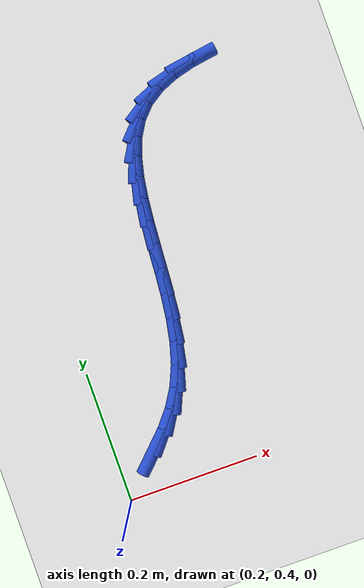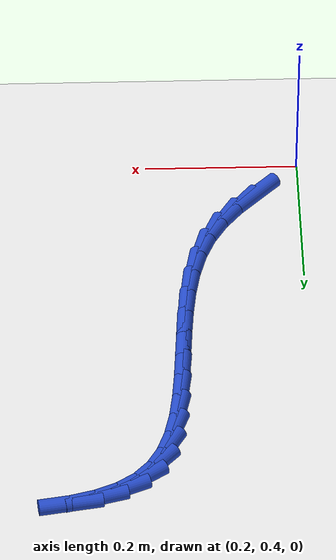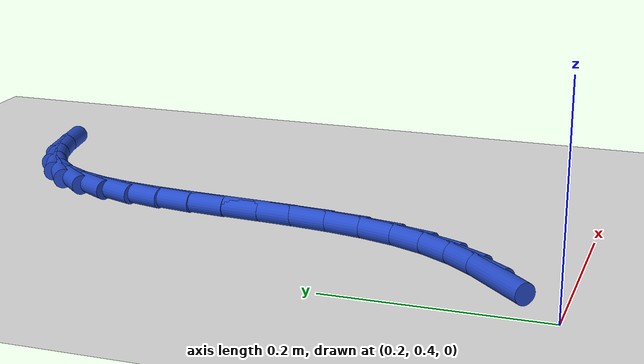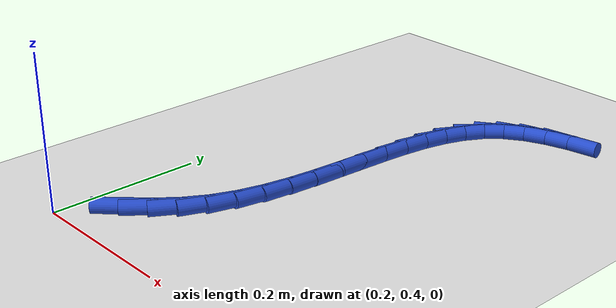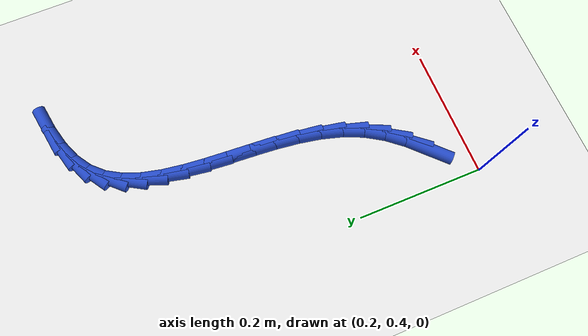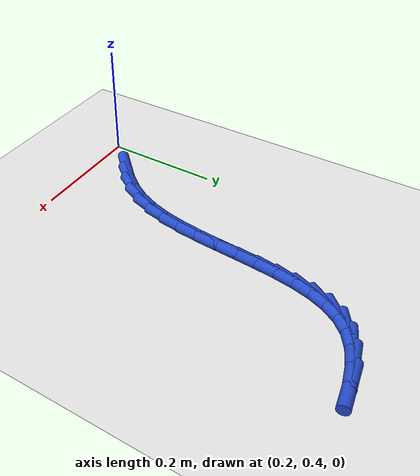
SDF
<sdf version="1.6">
 <world name="default">
  <model name="ground_plane">
   <static>1</static>
   <link name="link">
    <collision name="collision">
     <geometry><plane><normal>0 0 1</normal><size>100 100</size></plane></geometry>
     <surface><friction><ode><mu>100</mu><mu2>50</mu2></ode></friction></surface>
    </collision>
    <visual name="visual">
     <cast_shadows>0</cast_shadows>
     <geometry><plane><normal>0 0 1</normal><size>100 100</size></plane></geometry>
     <material>
      <script><uri>file://media/materials/scripts/gazebo.material</uri><name>Gazebo/WhiteGlow</name></script>
     </material>
    </visual>
   </link>
  </model>
  <model name="line">
   <link name="link_17">
    <pose>0.25880160316461814 0.46155499624757723 0.01 0 1.57 0.7823836760023695</pose>
    <collision name="collision">
     <geometry><cylinder><radius>0.01</radius><length>0.08</length></cylinder></geometry>
    </collision>
    <visual name="visual">
     <material>
      <script><name>Gazebo/Blue</name><uri>file://media/materials/scripts/gazebo.material</uri></script>
     </material>
     <geometry><cylinder><radius>0.01</radius><length>0.08</length></cylinder></geometry>
    </visual>
   </link>
   <link name="link_18">
    <pose>0.28259180375307147 0.4852021969546167 0.01 0 1.57 0.887079197893865</pose>
    <collision name="collision">
     <geometry><cylinder><radius>0.01</radius><length>0.08</length></cylinder></geometry>
    </collision>
    <visual name="visual">
     <material>
      <script><name>Gazebo/Blue</name><uri>file://media/materials/scripts/gazebo.material</uri></script>
     </material>
     <geometry><cylinder><radius>0.01</radius><length>0.08</length></cylinder></geometry>
    </visual>
   </link>
   <link name="link_19">
    <pose>0.30349362600594154 0.5108540238592197 0.01 0 1.57 1.0193093350753561</pose>
    <collision name="collision">
     <geometry><cylinder><radius>0.01</radius><length>0.08</length></cylinder></geometry>
    </collision>
    <visual name="visual">
     <material>
      <script><name>Gazebo/Blue</name><uri>file://media/materials/scripts/gazebo.material</uri></script>
     </material>
     <geometry><cylinder><radius>0.01</radius><length>0.08</length></cylinder></geometry>
    </visual>
   </link>
   <link name="link_20">
    <pose>0.3207855944472799 0.5389640510858612 0.01 0 1.57 1.1677564541266574</pose>
    <collision name="collision">
     <geometry><cylinder><radius>0.01</radius><length>0.08</length></cylinder></geometry>
    </collision>
    <visual name="visual">
     <material>
      <script><name>Gazebo/Blue</name><uri>file://media/materials/scripts/gazebo.material</uri></script>
     </material>
     <geometry><cylinder><radius>0.01</radius><length>0.08</length></cylinder></geometry>
    </visual>
   </link>
   <link name="link_21">
    <pose>0.3339505472622256 0.5698400742210961 0.01 0 1.57 1.2925705500301454</pose>
    <collision name="collision">
     <geometry><cylinder><radius>0.01</radius><length>0.08</length></cylinder></geometry>
    </collision>
    <visual name="visual">
     <material>
      <script><name>Gazebo/Blue</name><uri>file://media/materials/scripts/gazebo.material</uri></script>
     </material>
     <geometry><cylinder><radius>0.01</radius><length>0.08</length></cylinder></geometry>
    </visual>
   </link>
   <link name="link_22">
    <pose>0.34344860917789005 0.6030925913606555 0.01 0 1.57 1.3850402392008254</pose>
    <collision name="collision">
     <geometry><cylinder><radius>0.01</radius><length>0.08</length></cylinder></geometry>
    </collision>
    <visual name="visual">
     <material>
      <script><name>Gazebo/Blue</name><uri>file://media/materials/scripts/gazebo.material</uri></script>
     </material>
     <geometry><cylinder><radius>0.01</radius><length>0.08</length></cylinder></geometry>
    </visual>
   </link>
   <link name="link_23">
    <pose>0.35003177197942226 0.6381238523962037 0.01 0 1.57 1.4493305061179154</pose>
    <collision name="collision">
     <geometry><cylinder><radius>0.01</radius><length>0.08</length></cylinder></geometry>
    </collision>
    <visual name="visual">
     <material>
      <script><name>Gazebo/Blue</name><uri>file://media/materials/scripts/gazebo.material</uri></script>
     </material>
     <geometry><cylinder><radius>0.01</radius><length>0.08</length></cylinder></geometry>
    </visual>
   </link>
   <link name="link_24">
    <pose>0.35445207915239474 0.674336070330966 0.01 0 1.57 1.4891879721612624</pose>
    <collision name="collision">
     <geometry><cylinder><radius>0.01</radius><length>0.08</length></cylinder></geometry>
    </collision>
    <visual name="visual">
     <material>
      <script><name>Gazebo/Blue</name><uri>file://media/materials/scripts/gazebo.material</uri></script>
     </material>
     <geometry><cylinder><radius>0.01</radius><length>0.08</length></cylinder></geometry>
    </visual>
   </link>
   <link name="link_25">
    <pose>0.35746157418237945 0.7111314581681671 0.01 0 1.57 1.5069713046771587</pose>
    <collision name="collision">
     <geometry><cylinder><radius>0.01</radius><length>0.08</length></cylinder></geometry>
    </collision>
    <visual name="visual">
     <material>
      <script><name>Gazebo/Blue</name><uri>file://media/materials/scripts/gazebo.material</uri></script>
     </material>
     <geometry><cylinder><radius>0.01</radius><length>0.08</length></cylinder></geometry>
    </visual>
   </link>
   <link name="link_26">
    <pose>0.3598123005549488 0.7479122289110327 0.01 0 1.57 1.5033260001918445</pose>
    <collision name="collision">
     <geometry><cylinder><radius>0.01</radius><length>0.08</length></cylinder></geometry>
    </collision>
    <visual name="visual">
     <material>
      <script><name>Gazebo/Blue</name><uri>file://media/materials/scripts/gazebo.material</uri></script>
     </material>
     <geometry><cylinder><radius>0.01</radius><length>0.08</length></cylinder></geometry>
    </visual>
   </link>
   <link name="link_27">
    <pose>0.3622563017556751 0.7840805955627879 0.01 0 1.57 1.476979547674237</pose>
    <collision name="collision">
     <geometry><cylinder><radius>0.01</radius><length>0.08</length></cylinder></geometry>
    </collision>
    <visual name="visual">
     <material>
      <script><name>Gazebo/Blue</name><uri>file://media/materials/scripts/gazebo.material</uri></script>
     </material>
     <geometry><cylinder><radius>0.01</radius><length>0.08</length></cylinder></geometry>
    </visual>
   </link>
   <link name="link_28">
    <pose>0.3655456212701304 0.8190387711266578 0.01 0 1.57 1.4244400278740543</pose>
    <collision name="collision">
     <geometry><cylinder><radius>0.01</radius><length>0.08</length></cylinder></geometry>
    </collision>
    <visual name="visual">
     <material>
      <script><name>Gazebo/Blue</name><uri>file://media/materials/scripts/gazebo.material</uri></script>
     </material>
     <geometry><cylinder><radius>0.01</radius><length>0.08</length></cylinder></geometry>
    </visual>
   </link>
   <link name="link_29">
    <pose>0.37043230258388704 0.8521889686058675 0.01 0 1.57 1.3396408615475375</pose>
    <collision name="collision">
     <geometry><cylinder><radius>0.01</radius><length>0.08</length></cylinder></geometry>
    </collision>
    <visual name="visual">
     <material>
      <script><name>Gazebo/Blue</name><uri>file://media/materials/scripts/gazebo.material</uri></script>
     </material>
     <geometry><cylinder><radius>0.01</radius><length>0.08</length></cylinder></geometry>
    </visual>
   </link>
   <link name="link_30">
    <pose>0.37766838918251716 0.8829334010036423 0.01 0 1.57 1.2140908023654706</pose>
    <collision name="collision">
     <geometry><cylinder><radius>0.01</radius><length>0.08</length></cylinder></geometry>
    </collision>
    <visual name="visual">
     <material>
      <script><name>Gazebo/Blue</name><uri>file://media/materials/scripts/gazebo.material</uri></script>
     </material>
     <geometry><cylinder><radius>0.01</radius><length>0.08</length></cylinder></geometry>
    </visual>
   </link>
   <link name="link_31">
    <pose>0.388005924551593 0.9106742813232072 0.01 0 1.57 1.03934013480232</pose>
    <collision name="collision">
     <geometry><cylinder><radius>0.01</radius><length>0.08</length></cylinder></geometry>
    </collision>
    <visual name="visual">
     <material>
      <script><name>Gazebo/Blue</name><uri>file://media/materials/scripts/gazebo.material</uri></script>
     </material>
     <geometry><cylinder><radius>0.01</radius><length>0.08</length></cylinder></geometry>
    </visual>
   </link>
   <link name="link_32">
    <pose>0.40219695217668694 0.9348138225677877 0.01 0 1.57 0.815283021354379</pose>
    <collision name="collision">
     <geometry><cylinder><radius>0.01</radius><length>0.08</length></cylinder></geometry>
    </collision>
    <visual name="visual">
     <material>
      <script><name>Gazebo/Blue</name><uri>file://media/materials/scripts/gazebo.material</uri></script>
     </material>
     <geometry><cylinder><radius>0.01</radius><length>0.08</length></cylinder></geometry>
    </visual>
   </link>
   <link name="link_33">
    <pose>0.42098562203401996 0.9547604355940542 0.01 0 1.57 0.5829530819946772</pose>
    <collision name="collision">
     <geometry><cylinder><radius>0.01</radius><length>0.08</length></cylinder></geometry>
    </collision>
    <visual name="visual">
     <material>
      <script><name>Gazebo/Blue</name><uri>file://media/materials/scripts/gazebo.material</uri></script>
     </material>
     <geometry><cylinder><radius>0.01</radius><length>0.08</length></cylinder></geometry>
    </visual>
   </link>
   <link name="link_34">
    <pose>0.4445972717253716 0.970329894184308 0.01 0 1.57 0.3967951697159996</pose>
    <collision name="collision">
     <geometry><cylinder><radius>0.01</radius><length>0.08</length></cylinder></geometry>
    </collision>
    <visual name="visual">
     <material>
      <script><name>Gazebo/Blue</name><uri>file://media/materials/scripts/gazebo.material</uri></script>
     </material>
     <geometry><cylinder><radius>0.01</radius><length>0.08</length></cylinder></geometry>
    </visual>
   </link>
   <link name="link_35">
    <pose>0.47242595205525834 0.9819906848132454 0.01 0 1.57 0.25808028765324126</pose>
    <collision name="collision">
     <geometry><cylinder><radius>0.01</radius><length>0.08</length></cylinder></geometry>
    </collision>
    <visual name="visual">
     <material>
      <script><name>Gazebo/Blue</name><uri>file://media/materials/scripts/gazebo.material</uri></script>
     </material>
     <geometry><cylinder><radius>0.01</radius><length>0.08</length></cylinder></geometry>
    </visual>
   </link>
   <link name="link_36">
    <pose>0.5037909379305072 0.9902700067580135 0.01 0 1.57 0.15722351294328715</pose>
    <collision name="collision">
     <geometry><cylinder><radius>0.01</radius><length>0.08</length></cylinder></geometry>
    </collision>
    <visual name="visual">
     <material>
      <script><name>Gazebo/Blue</name><uri>file://media/materials/scripts/gazebo.material</uri></script>
     </material>
     <geometry><cylinder><radius>0.01</radius><length>0.08</length></cylinder></geometry>
    </visual>
   </link>
  </model>
 </world>
</sdf>
